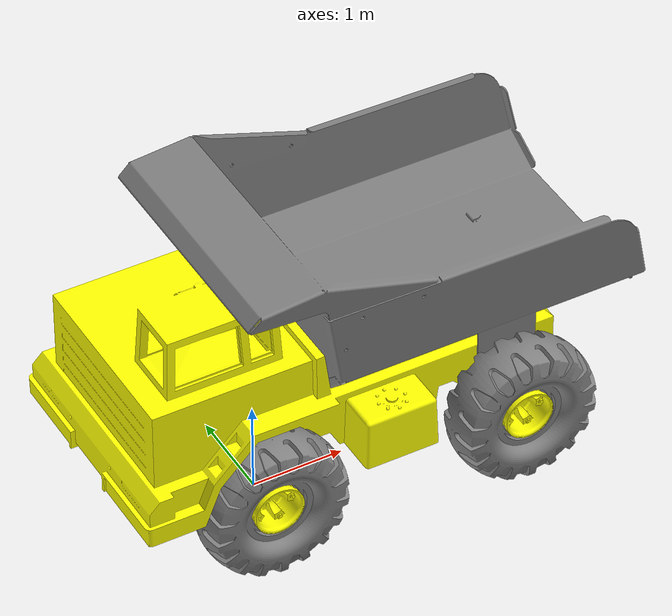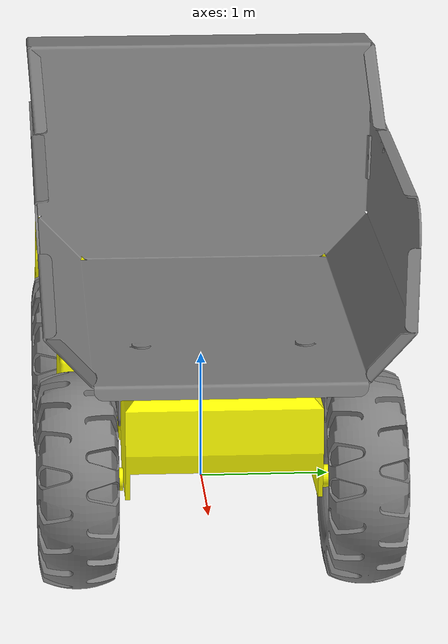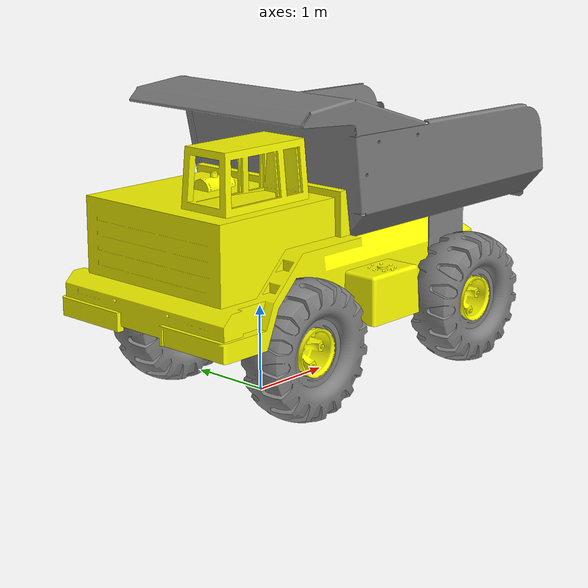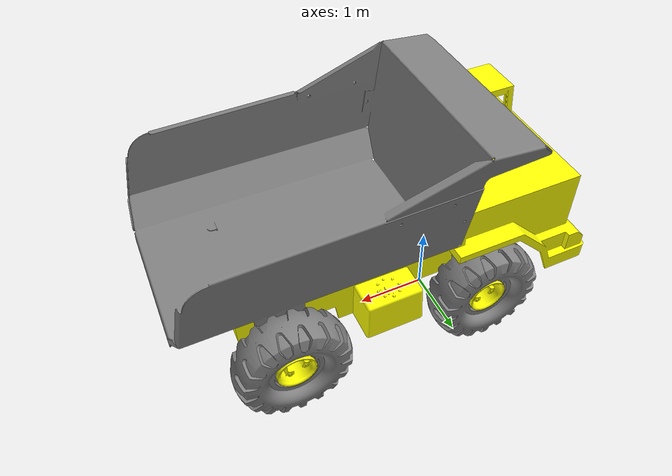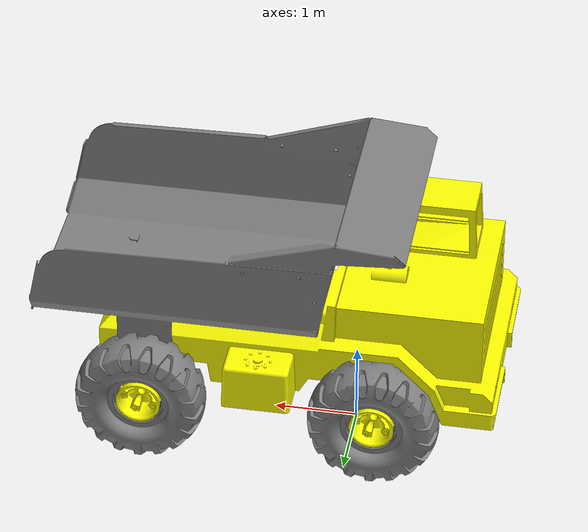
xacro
<?xml version="1.0"?>

<robot name="dump_truck"
       xmlns:sensor="http://playerstage.sourceforge.net/gazebo/xmlschema/#sensor"
       xmlns:controller="http://playerstage.sourceforge.net/gazebo/xmlschema/#controller"
       xmlns:interface="http://playerstage.sourceforge.net/gazebo/xmlschema/#interface"
       xmlns:xacro="http://ros.org/wiki/xacro" >

  <!-- The following included files set up definitions of parts of the robot body -->
  <!-- dump_truck DriveTrain: the body or chassys and wheels of truck -->
  <include filename="$(find dump_truck_description)/urdf/drivetrain/drivetrain.urdf.xacro" />
  <!-- dump_truck Bed: the dump bed of truck -->
  <include filename="$(find dump_truck_description)/urdf/bed/dump_bed.urdf.xacro" />
  <!-- Materials for visualization -->
  <include filename="$(find dump_truck_description)/urdf/materials.urdf.xacro" />

  <xacro:dump_truck_body name="dump_base"/>

  <xacro:dump_truck_bed parent="body"/>

</robot>

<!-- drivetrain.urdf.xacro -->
<!-- XML namespaces -->
<robot xmlns:sensor="http://playerstage.sourceforge.net/gazebo/xmlschema/#sensor"
       xmlns:controller="http://playerstage.sourceforge.net/gazebo/xmlschema/#controller"
       xmlns:interface="http://playerstage.sourceforge.net/gazebo/xmlschema/#interface"
       xmlns:xacro="http://ros.org/wiki/xacro">

  <!-- Things that are needed only for Gazebo (not the physical robot).  These include
       sensor and controller plugin specifications -->
  <include filename="$(find dump_truck_description)/urdf/drivetrain/drive.gazebo.xacro" />

  <property name="PI" value="3.141593" />

  <!--============================= BODY ===============================-->
  <!-- Body Reference Systems with respect to World Refence Systems -->
  <property name="body_cs_x" value="3.01509" />
  <property name="body_cs_y" value="0.784225" />
  <property name="body_cs_z" value="0" />
  <!-- Body Center of Gravity with respect to World Refence Systems  -->
  <property name="body_cg_x" value="0" />
  <property name="body_cg_y" value="1.04622" />
  <property name="body_cg_z" value="0.03792" />
  <!-- Body Center of Rotation with respect to World Refence Systems  -->
  <property name="body_cr_x" value="0" />
  <property name="body_cr_y" value="0" />
  <property name="body_cr_z" value="0" />

  <!--============================ WHEELS ===============================-->
  <!-- Wheels Reference Systems and Center of Gravity with respect to World Refence Systems  -->
  <property name="wheel_csg_x" value="0" />
  <property name="wheel_csg_y" value="0" />
  <property name="wheel_csg_z" value="0" />
  <!-- Right Front Wheel Center of Rotation with respect to World Refence Systems  -->
  <property name="right_front_wheel_cr_x" value="-0.35295" />
  <property name="right_front_wheel_cr_y" value="0.784225" />
  <property name="right_front_wheel_cr_z" value="-1.03188" />
  <!-- Left Front Wheel Center of Rotation with respect to World Refence Systems  -->
  <property name="left_front_wheel_cr_x" value="-0.35295" />
  <property name="left_front_wheel_cr_y" value="0.784225" />
  <property name="left_front_wheel_cr_z" value="1.03188" />
  <!-- Right Back Wheel Center of Rotation with respect to World Refence Systems  -->
  <property name="right_back_wheel_cr_x" value="2.45375" />
  <property name="right_back_wheel_cr_y" value="0.784225" />
  <property name="right_back_wheel_cr_z" value="-1.03188" />
  <!-- Left Back Wheel Center of Rotation with respect to World Refence Systems  -->
  <property name="left_back_wheel_cr_x" value="2.45375" />
  <property name="left_back_wheel_cr_y" value="0.784225" />
  <property name="left_back_wheel_cr_z" value="1.03188" />

  <xacro:macro name="dump_truck_wheel" params="side type *origin">
    <!-- Wheel-Body Joint -->
    <joint name="${side}_${type}_wheel_body_joint" type="fixed">
      <parent link="body_link"/>
      <child link="${side}_${type}_wheel_link"/>
      <insert_block name="origin"/>
    </joint>
    <!-- Rim-Wheel Joint -->
    <joint name="rim_${side}_${type}_wheel_joint" type="fixed">
      <parent link="${side}_${type}_wheel_link"/>
      <child link="${side}_${type}_rim_link"/>
      <origin rpy="0 0 0" xyz="0 0 0"/>
    </joint>

    <!-- Side Type Wheel Link -->
    <link name="${side}_${type}_wheel_link">
      <visual>
	<origin rpy="0 0 0" xyz="0 0 0"/>
	<geometry>
	  <mesh filename="package://dump_truck_description/meshes/drivetrain/tire.dae"/>
	</geometry>
	<material name="Grey"/>
      </visual>
      <inertial>
	<mass value="613.6"/>
	<origin rpy="0 0 0" xyz="0 0 0"/>
	<inertia ixx="115.4" ixy="0" ixz="0"
		 iyy="205"   iyz="0" izz="115.4"/>

      </inertial>
      <collision>
	<origin rpy="0 0 0" xyz="0 0 0"/>
	<geometry>
	  <mesh filename="package://dump_truck_description/meshes/drivetrain/tire.stl"/>
	</geometry>
      </collision>
    </link>
    <gazebo reference="${side}_${type}_wheel_link">
      <material>Gazebo/Grey</material>
    </gazebo>
    <!-- Rim Link -->
    <link name="${side}_${type}_rim_link">
      <visual>
	<origin rpy="0 0 0" xyz="0 0 0"/>
	<geometry>
	  <mesh filename="package://dump_truck_description/meshes/drivetrain/rim.dae"/>
	</geometry>
	<material name="Yellow"/>
      </visual>
      <inertial>
	<mass value="35.3"/>
	<origin rpy="0 0 0" xyz="0 0 0"/>
	<inertia ixx="1.09" ixy="0" ixz="0"
		 iyy="1.32" iyz="0" izz="1.09"/>
      </inertial>
      <collision>
	<origin rpy="0 0 0" xyz="0 0 0"/>
	<geometry>
	  <mesh filename="package://dump_truck_description/meshes/drivetrain/rim.stl"/>
	</geometry>
      </collision>
    </link>
    <gazebo reference="${side}_${type}_rim_link">
      <material>Gazebo/Yellow</material>
    </gazebo>

  <!-- extensions -->
    <xacro:dump_truck_wheel_gazebo side="${side}" type="${type}" />
  </xacro:macro>

  <xacro:macro name="dump_truck_body" params="name">
    <!-- FootPrint Joint -->
    <joint name="${name}_footprint_joint" type="fixed">
       <parent link="${name}_footprint" />
       <child link="body_link" />
       <origin rpy="${PI/2} 0 0" xyz="${body_cr_x}
                                      ${body_cr_y}
                                      ${body_cr_z}" />
    </joint>

    <!-- Virtual FootPrint Link -->
    <link name="${name}_footprint">
      <visual>
	<origin rpy="0 0 0" xyz="0 0 0" />
	<geometry>
	  <box size="0.001 0.001 0.001" />
	</geometry>
      </visual>
      <inertial>
	<mass value="1.0" />
	<origin xyz="0 0 0" />
	<inertia ixx="0.01" ixy="0.01" ixz="0.01"
		 iyy="0.01" iyz="0.01" izz="0.01" />
      </inertial>
      <collision>
	<origin rpy="0 0 0" xyz="0 0 0.2" />
	<geometry>
	  <box size="0.001 0.001 0.001" />
	</geometry>
      </collision>
    </link>
    <!-- Body Link -->
    <link name="body_link">
      <visual>
	<origin rpy="0 0 0" xyz="${body_cs_x-body_cr_x}
                                 ${body_cs_y-body_cr_y}
                                 ${body_cs_z-body_cr_z}" />
	<geometry>
	  <mesh filename="package://dump_truck_description/meshes/drivetrain/body.dae"/>
	</geometry>
	<material name="Yellow" />
      </visual>
      <inertial>
	<mass value="6835.2" />
	<origin rpy="0 0 0" xyz="${body_cg_x-body_cr_x}
                                 ${body_cg_y-body_cr_y}
                                 ${body_cg_z-body_cr_z}" />
	<inertia ixx="12875.2" ixy="-23160.2" ixz="-949.1"
		 iyy="76746.9" iyz="528.9"    izz="82576.5" />
      </inertial>
      <collision>
	<origin rpy="0 0 0" xyz="${body_cs_x-body_cr_x}
                                 ${body_cs_y-body_cr_y}
                                 ${body_cs_z-body_cr_z}" />
	<geometry>
	  <mesh filename="package://dump_truck_description/meshes/drivetrain/body.stl"/>
	</geometry>
      </collision>
    </link>
    <gazebo reference="body_link">
      <material>Gazebo/Yellow</material>
    </gazebo>

    <!-- MACROs -->
    <!-- Right Front Wheel -->
    <xacro:dump_truck_wheel side="right" type="front">
      <origin rpy="${PI/2} 0 0" xyz="${right_front_wheel_cr_x-body_cr_x}
			             ${right_front_wheel_cr_y-body_cr_y}
			             ${right_front_wheel_cr_z-body_cr_z}"/>
    </xacro:dump_truck_wheel>
    <!-- Left Front Wheel -->
    <xacro:dump_truck_wheel side="left" type="front">
      <origin rpy="${-PI/2} 0 0" xyz="${left_front_wheel_cr_x-body_cr_x}
			              ${left_front_wheel_cr_y-body_cr_y}
			              ${left_front_wheel_cr_z-body_cr_z}"/>
    </xacro:dump_truck_wheel>
    <!-- Right Back Wheel -->
    <xacro:dump_truck_wheel side="right" type="back">
      <origin rpy="${PI/2} 0 0" xyz="${right_back_wheel_cr_x-body_cr_x}
			             ${right_back_wheel_cr_y-body_cr_y}
			             ${right_back_wheel_cr_z-body_cr_z}"/>
    </xacro:dump_truck_wheel>
    <!-- Left Back Wheel -->
    <xacro:dump_truck_wheel side="left" type="back">
      <origin rpy="${-PI/2} 0 0" xyz="${left_back_wheel_cr_x-body_cr_x}
			              ${left_back_wheel_cr_y-body_cr_y}
			              ${left_back_wheel_cr_z-body_cr_z}"/>
    </xacro:dump_truck_wheel>
  </xacro:macro>
</robot>

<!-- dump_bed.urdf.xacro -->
<!-- XML namespaces -->
<robot xmlns:sensor="http://playerstage.sourceforge.net/gazebo/xmlschema/#sensor"
       xmlns:controller="http://playerstage.sourceforge.net/gazebo/xmlschema/#controller"
       xmlns:interface="http://playerstage.sourceforge.net/gazebo/xmlschema/#interface"
       xmlns:xacro="http://ros.org/wiki/xacro">

  <!--============================== BED =================================-->
  <!-- Bed Reference Systems with respect to World Refence Systems  -->
  <property name="bed_cs_x" value="0" />
  <property name="bed_cs_y" value="1.86038" />
  <property name="bed_cs_z" value="-3.74318" />
  <!-- Bed Center of Gravity with respect to World Refence Systems  -->
  <property name="bed_cg_x" value="0" />
  <property name="bed_cg_y" value="1.860415" />
  <property name="bed_cg_z" value="1.42984" />
  <!-- Bed Center of Rotation with respect to World Refence Systems  -->
  <property name="bed_cr_x" value="2.45375" />
  <property name="bed_cr_y" value="1.25667" />
  <property name="bed_cr_z" value="0" />

  <xacro:macro name="dump_truck_bed" params="parent">
    <!-- Bed-Body Joint -->
    <joint name="bed_${parent}_joint" type="fixed">
      <parent link="${parent}_link"/>
      <child link="bed_link"/>
      <origin rpy="0 ${-PI/2} 0" xyz="${bed_cr_x-body_cr_x}
			              ${bed_cr_y-body_cr_y}
			              ${bed_cr_z-body_cr_z}"/>
    </joint>

    <!-- Bed Link -->
    <link name="bed_link">
      <visual>
	<origin rpy="0 0 0" xyz="${bed_cs_x-bed_cr_z}
				 ${bed_cs_y-bed_cr_y}
				 ${bed_cs_z+bed_cr_x}"/>
	<geometry>
	  <mesh filename="package://dump_truck_description/meshes/bed/dump_bed.dae"/>
	</geometry>
	<material name="Grey"/>
      </visual>
      <inertial>
	<mass value="2591.6"/>
	<origin rpy="0 0 0" xyz="${bed_cg_x-bed_cr_z}
				 ${bed_cg_y-bed_cr_y}
				 ${bed_cg_z+bed_cr_x}"/>
	<inertia ixx="19530.7" ixy="0"    ixz="0"
		 iyy="20172.8" iyz="4484" izz="4019.2"/>
      </inertial>
      <collision>
	<origin rpy="0 0 0" xyz="${bed_cs_x-bed_cr_z}
				 ${bed_cs_y-bed_cr_y}
				 ${bed_cs_z+bed_cr_x}"/>
	<geometry>
	  <mesh filename="package://dump_truck_description/meshes/bed/dump_bed.stl"/>
	</geometry>
      </collision>
    </link>
    <gazebo reference="bed_link">
      <material>Gazebo/Grey</material>
    </gazebo>
  </xacro:macro>
</robot>

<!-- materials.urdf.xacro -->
<robot>

  <material name="Yellow">
    <color rgba="1 1 0 1" />
  </material>

  <material name="Grey">
      <color rgba="0.501961 0.501961 0.501961 1" />
      <!-- Bucket 0.501961 0.501961 0.501961 1 Chimmey 1 0.94902 0.909804 1 -->
  </material>

  <material name="Black">
    <color rgba="0 0 0 1" />
  </material>

</robot>
